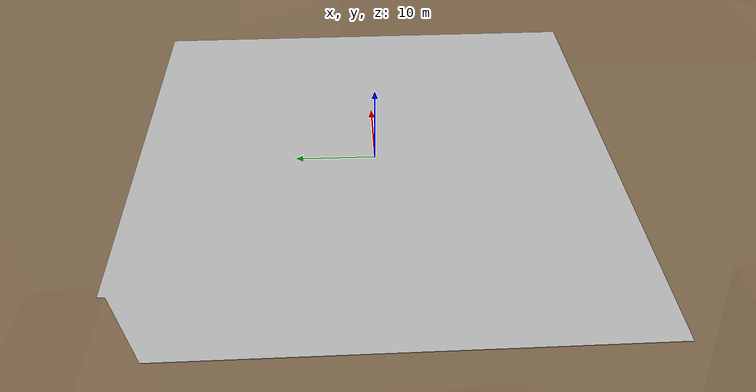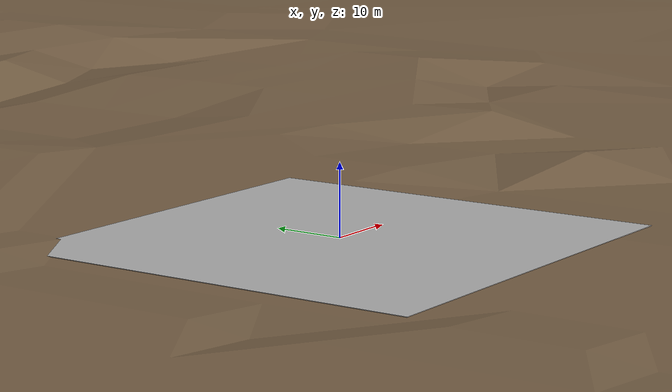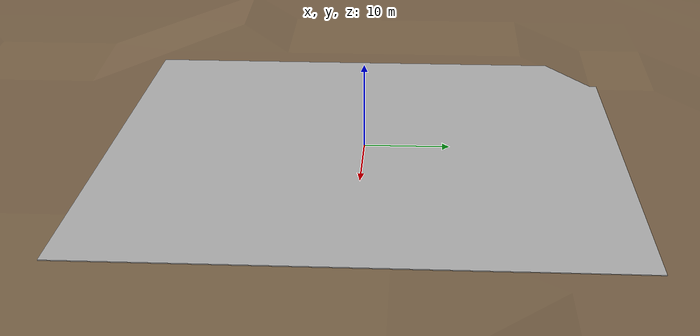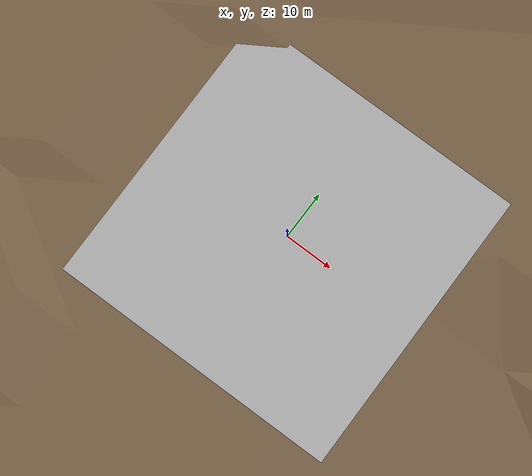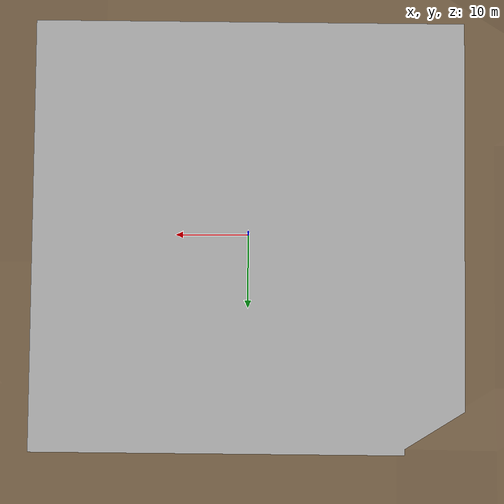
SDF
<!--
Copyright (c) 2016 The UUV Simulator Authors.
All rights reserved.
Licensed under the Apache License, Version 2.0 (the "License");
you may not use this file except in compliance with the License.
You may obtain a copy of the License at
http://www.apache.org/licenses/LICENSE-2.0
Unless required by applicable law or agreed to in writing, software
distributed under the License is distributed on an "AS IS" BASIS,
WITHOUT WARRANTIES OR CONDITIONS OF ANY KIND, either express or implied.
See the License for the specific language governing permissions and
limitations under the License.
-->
<?xml version="1.0" ?>
<sdf version="1.5">
  <world name="example_underwater">
    <physics name="default_physics" default="true" type="ode">
      <max_step_size>0.002</max_step_size>
      <real_time_factor>1</real_time_factor>
      <real_time_update_rate>500</real_time_update_rate>
      <ode>
        <solver>
          <type>quick</type>
          <iters>50</iters>
          <sor>0.5</sor>
        </solver>
      </ode>
    </physics>
    <scene>
      <ambient>0.01 0.01 0.01 1.0</ambient>
      <sky>
        <clouds>
          <speed>12</speed>
        </clouds>
      </sky>
      <shadows>1</shadows>
    </scene>

    <!-- Global light source -->
    <include>
      <uri>model://sun</uri>
    </include>

    <include>
      <uri>model://tutorial_seabed</uri>
      <pose>0 0 0 0 0 0</pose>
    </include>

    <plugin name="underwater_current_plugin" filename="libuuv_underwater_current_ros_plugin.so">
      <namespace>hydrodynamics</namespace>
      <constant_current>
        <topic>current_velocity</topic>
        <velocity>
          <mean>0</mean>
          <min>0</min>
          <max>5</max>
          <mu>0.0</mu>
          <noiseAmp>0.0</noiseAmp>
        </velocity>

        <horizontal_angle>
          <mean>0</mean>
          <min>-3.141592653589793238</min>
          <max>3.141592653589793238</max>
          <mu>0.0</mu>
          <noiseAmp>0.0</noiseAmp>
        </horizontal_angle>

        <vertical_angle>
          <mean>0</mean>
          <min>-3.141592653589793238</min>
          <max>3.141592653589793238</max>
          <mu>0.0</mu>
          <noiseAmp>0.0</noiseAmp>
        </vertical_angle>
      </constant_current>
    </plugin>

    <plugin name="sc_interface" filename="libuuv_sc_ros_interface_plugin.so"/>

  </world>
</sdf>

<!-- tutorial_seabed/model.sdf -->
<sdf version="1.5">
<model name="seabed">
  <static>true</static>
  <link name="seabed_link">

  <visual name="surface">
    <cast_shadows>false</cast_shadows>
    <pose>0 0 0 0 0 0</pose>
    <geometry>
      <box>
        <size>60 60 .1</size>
      </box>
    </geometry>
    <material>
      <script>
        <uri>file://Media/materials/scripts/water.material</uri>
        <name>UUVSimulator/StaticWater</name>
      </script>
    </material>
  </visual>

  <visual name="seafloor">
    <pose>0 0 0 0 0 0</pose>
    <geometry>
      <mesh><uri>model://tutorial_seabed/meshes/seabed.stl</uri><scale>1 1 1</scale></mesh>
    </geometry>
    <material>
      <script>
        <uri>file://Media/materials/scripts/sand.material</uri>
        <name>UUVSimulator/SandAndStones</name>
      </script>
    </material>
  </visual>

  <collision name="seafloor">
    <pose>0 0 0 0 0 0</pose>
    <geometry>
      <mesh><uri>model://tutorial_seabed/meshes/seabed.stl</uri><scale>1 1 1</scale></mesh>
    </geometry>
  </collision>

  </link>
</model>
</sdf>
